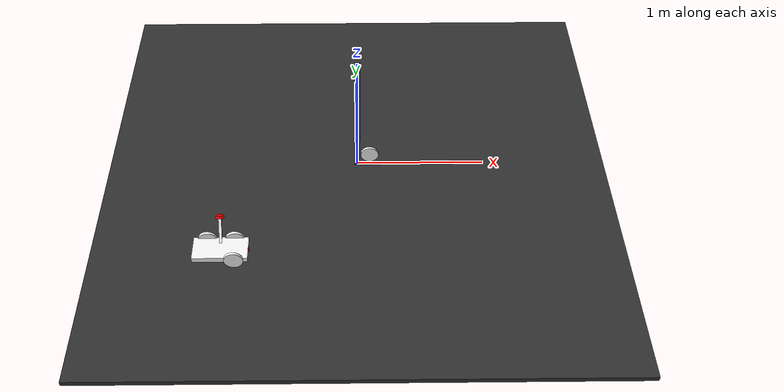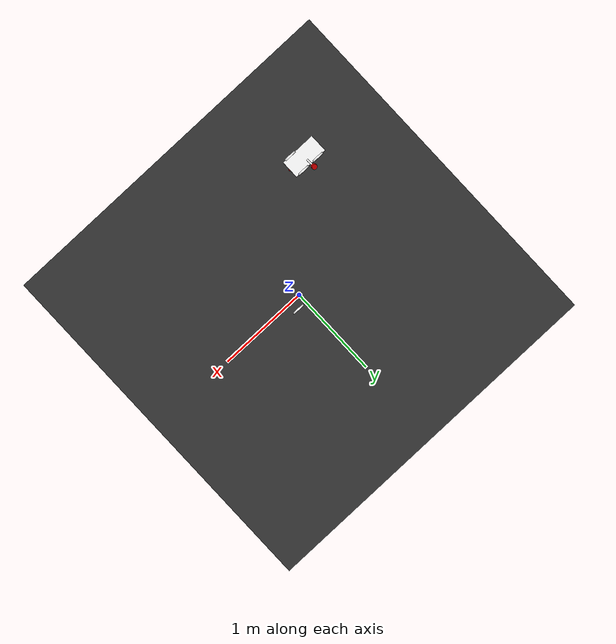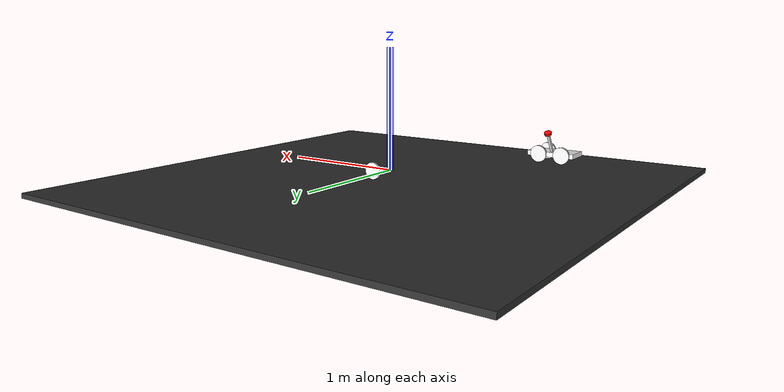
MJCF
<mujoco>
    <visual>
        <global offwidth="1280" offheight="1280"/>
    </visual>
    <worldbody>
        <body name="floor" pos="0 0 -0.1">
            <geom size="2.0 2.0 0.02" rgba="0.2 0.2 0.2 1" type="box" />
        </body>
        <body name="x_arrow" pos="0.5 0 0">
            <geom size="0.5 0.01 0.01" rgba="1 0 0 0.5" type="box" />
        </body>
        <body name="y_arrow" pos="0 0.5 0">
            <geom size="0.01 0.5 0.01" rgba="0 1 0 0.5" type="box" />
        </body>
        <body name="z_arrow" pos="0 0 0.5">
            <geom size="0.02 0.02 0.5" rgba="0 0 1 0.5" type="box" />
        </body>
        <body name="car" pos="-1 -1 0.1" axisangle="0 0 1 180">
            <geom size="0.2 0.1 0.02" rgba="1 1 1 0.9" type="box"/>
            <body name="front" pos="-0.2 0 0">
                <geom size="0.01 0.01 0.01" rgba="1 0 0 0.5" type="box" />
            </body>
            <body name="wheel_2" pos="-0.1 0.1 0" axisangle="1 0 0 90">
                <geom size="0.07 0.01" rgba="1 1 1 0.9" type="cylinder"/>
            </body>
            <body name="wheel_3" pos="0.1 -0.1 0" axisangle="1 0 0 90">
                <geom size="0.07 0.01" rgba="1 1 1 0.9" type="cylinder"/>
            </body>
            <body name="wheel_4" pos="-0.1 -0.1 0" axisangle="1 0 0 90">
                <geom size="0.07 0.01" rgba="1 1 1 0.9" type="cylinder"/>
            </body>
            <body name="radar" pos="0 0 0.1" axisangle="0 0 1 0">
                <body name="stick" pos="0 -0.1 0" axisangle="1 0 0 30">
                    <geom size="0.01 0.01 0.1" rgba="1 1 1 1" type="box"/>
                    <body name="head" pos="0 0 0.1">
                        <geom size="0.03 0.01" rgba="1 0 0 1" type="cylinder"/>
                    </body>
                </body>
            </body>
        </body>
        <body name="wheel_1" pos="0.1 0.1 0" axisangle="1 0 0 90">
            <geom size="0.07 0.01" rgba="1 1 1 0.9" type="cylinder"/>
        </body>
    </worldbody>
</mujoco>
